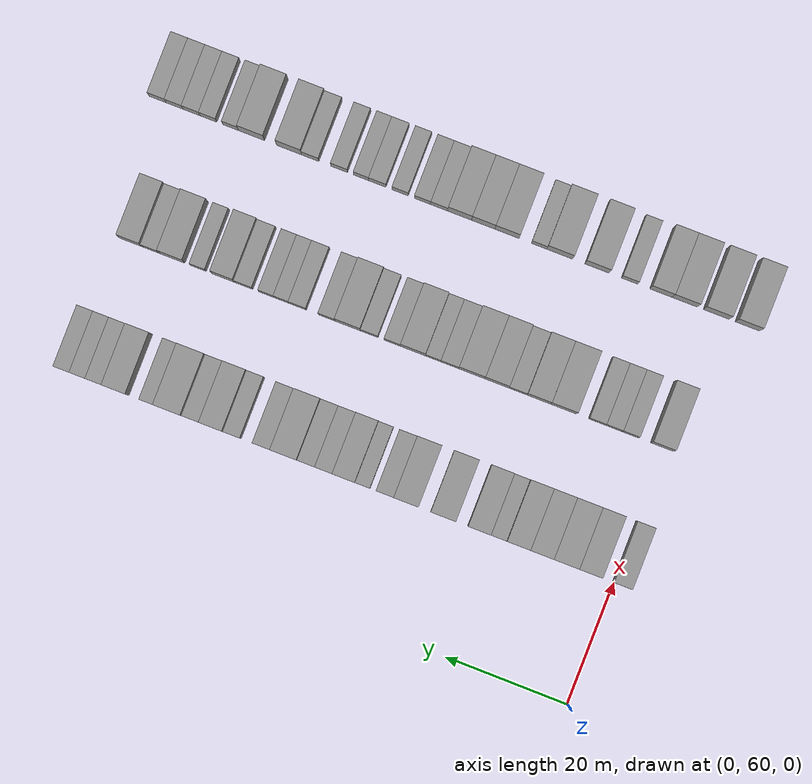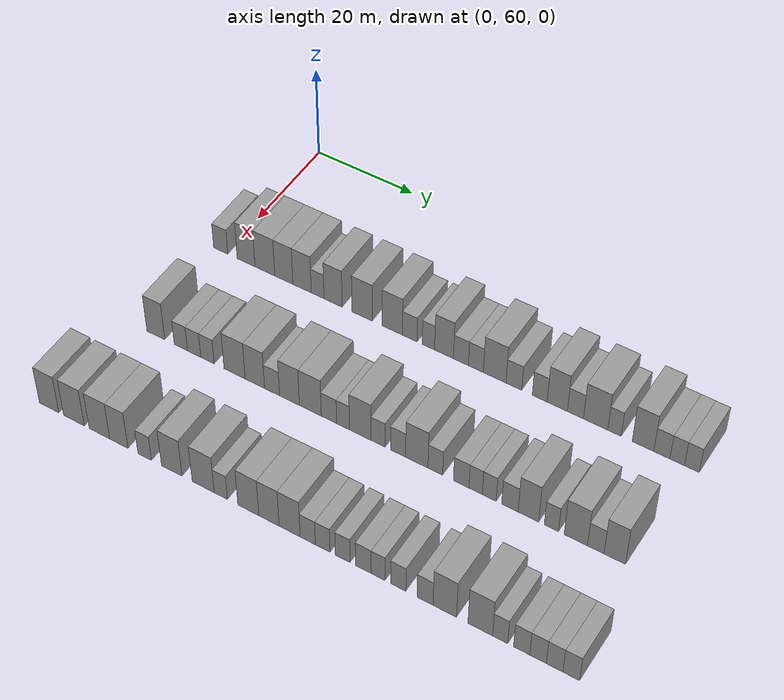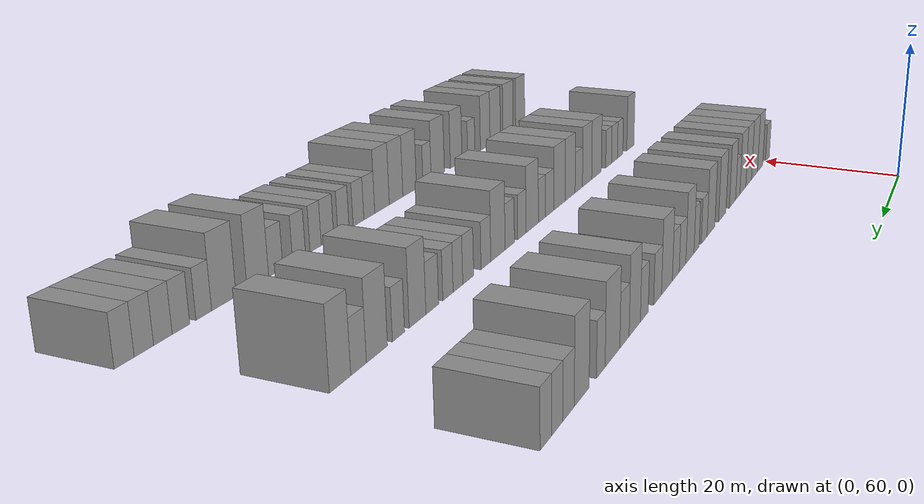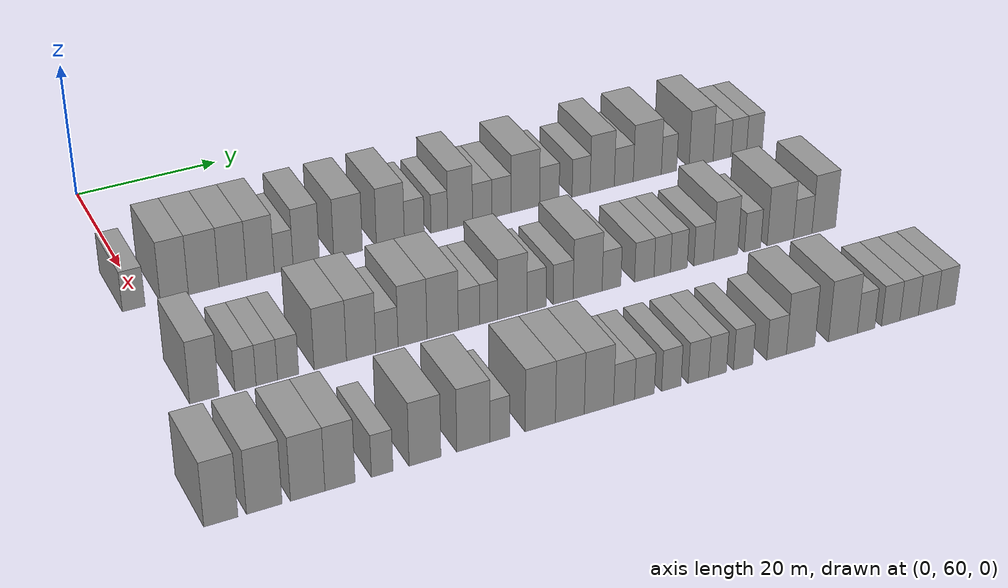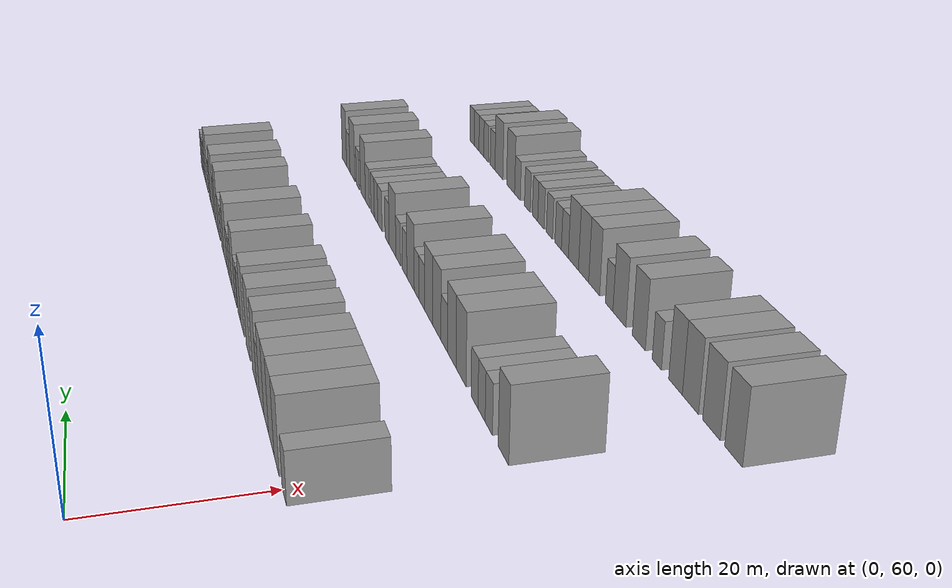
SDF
<sdf version="1.6">
 <world name="default">
  <model name="building_74">
   <static>1</static>
   <pose>25.0000 58.7810 0 0.000000 0.000000 0.000000</pose>
   <link name="link">
    <pose>0 0 3.00 0 0 0</pose>
    <collision name="collision"><geometry><box><size>10.0000 2.9984 6.0000</size></box></geometry></collision>
    <visual name="visual">
     <cast_shadows>0</cast_shadows>
     <geometry><box><size>10.0000 2.9984 6.0000</size></box></geometry>
     <material>
      <script>
       <uri>model://grey_wall/materials/scripts</uri>
       <uri>model://grey_wall/materials/textures</uri>
       <name>vrc/grey_wall</name>
      </script>
     </material>
    </visual>
   </link>
  </model>
  <model name="building_75">
   <static>1</static>
   <pose>25.0000 64.1665 0 0.000000 0.000000 0.000000</pose>
   <link name="link">
    <pose>0 0 4.50 0 0 0</pose>
    <collision name="collision"><geometry><box><size>10.0000 3.7727 9.0000</size></box></geometry></collision>
    <visual name="visual">
     <cast_shadows>0</cast_shadows>
     <geometry><box><size>10.0000 3.7727 9.0000</size></box></geometry>
     <material>
      <script>
       <uri>model://grey_wall/materials/scripts</uri>
       <uri>model://grey_wall/materials/textures</uri>
       <name>vrc/grey_wall</name>
      </script>
     </material>
    </visual>
   </link>
  </model>
  <model name="building_76">
   <static>1</static>
   <pose>25.0000 68.1159 0 0.000000 0.000000 0.000000</pose>
   <link name="link">
    <pose>0 0 4.50 0 0 0</pose>
    <collision name="collision"><geometry><box><size>10.0000 4.1260 9.0000</size></box></geometry></collision>
    <visual name="visual">
     <cast_shadows>0</cast_shadows>
     <geometry><box><size>10.0000 4.1260 9.0000</size></box></geometry>
     <material>
      <script>
       <uri>model://grey_wall/materials/scripts</uri>
       <uri>model://grey_wall/materials/textures</uri>
       <name>vrc/grey_wall</name>
      </script>
     </material>
    </visual>
   </link>
  </model>
  <model name="building_77">
   <static>1</static>
   <pose>25.0000 72.0688 0 0.000000 0.000000 0.000000</pose>
   <link name="link">
    <pose>0 0 4.50 0 0 0</pose>
    <collision name="collision"><geometry><box><size>10.0000 3.7799 9.0000</size></box></geometry></collision>
    <visual name="visual">
     <cast_shadows>0</cast_shadows>
     <geometry><box><size>10.0000 3.7799 9.0000</size></box></geometry>
     <material>
      <script>
       <uri>model://grey_wall/materials/scripts</uri>
       <uri>model://grey_wall/materials/textures</uri>
       <name>vrc/grey_wall</name>
      </script>
     </material>
    </visual>
   </link>
  </model>
  <model name="building_78">
   <static>1</static>
   <pose>25.0000 75.8521 0 0.000000 0.000000 0.000000</pose>
   <link name="link">
    <pose>0 0 4.50 0 0 0</pose>
    <collision name="collision"><geometry><box><size>10.0000 3.7866 9.0000</size></box></geometry></collision>
    <visual name="visual">
     <cast_shadows>0</cast_shadows>
     <geometry><box><size>10.0000 3.7866 9.0000</size></box></geometry>
     <material>
      <script>
       <uri>model://grey_wall/materials/scripts</uri>
       <uri>model://grey_wall/materials/textures</uri>
       <name>vrc/grey_wall</name>
      </script>
     </material>
    </visual>
   </link>
  </model>
  <model name="building_79">
   <static>1</static>
   <pose>25.0000 79.0562 0 0.000000 0.000000 0.000000</pose>
   <link name="link">
    <pose>0 0 3.00 0 0 0</pose>
    <collision name="collision"><geometry><box><size>10.0000 2.6215 6.0000</size></box></geometry></collision>
    <visual name="visual">
     <cast_shadows>0</cast_shadows>
     <geometry><box><size>10.0000 2.6215 6.0000</size></box></geometry>
     <material>
      <script>
       <uri>model://grey_wall/materials/scripts</uri>
       <uri>model://grey_wall/materials/textures</uri>
       <name>vrc/grey_wall</name>
      </script>
     </material>
    </visual>
   </link>
  </model>
  <model name="building_80">
   <static>1</static>
   <pose>25.0000 82.2102 0 0.000000 0.000000 0.000000</pose>
   <link name="link">
    <pose>0 0 4.50 0 0 0</pose>
    <collision name="collision"><geometry><box><size>10.0000 3.6865 9.0000</size></box></geometry></collision>
    <visual name="visual">
     <cast_shadows>0</cast_shadows>
     <geometry><box><size>10.0000 3.6865 9.0000</size></box></geometry>
     <material>
      <script>
       <uri>model://grey_wall/materials/scripts</uri>
       <uri>model://grey_wall/materials/textures</uri>
       <name>vrc/grey_wall</name>
      </script>
     </material>
    </visual>
   </link>
  </model>
  <model name="building_81">
   <static>1</static>
   <pose>25.0000 88.0897 0 0.000000 0.000000 0.000000</pose>
   <link name="link">
    <pose>0 0 4.50 0 0 0</pose>
    <collision name="collision"><geometry><box><size>10.0000 4.0726 9.0000</size></box></geometry></collision>
    <visual name="visual">
     <cast_shadows>0</cast_shadows>
     <geometry><box><size>10.0000 4.0726 9.0000</size></box></geometry>
     <material>
      <script>
       <uri>model://grey_wall/materials/scripts</uri>
       <uri>model://grey_wall/materials/textures</uri>
       <name>vrc/grey_wall</name>
      </script>
     </material>
    </visual>
   </link>
  </model>
  <model name="building_82">
   <static>1</static>
   <pose>25.0000 94.1368 0 0.000000 0.000000 0.000000</pose>
   <link name="link">
    <pose>0 0 4.50 0 0 0</pose>
    <collision name="collision"><geometry><box><size>10.0000 4.0214 9.0000</size></box></geometry></collision>
    <visual name="visual">
     <cast_shadows>0</cast_shadows>
     <geometry><box><size>10.0000 4.0214 9.0000</size></box></geometry>
     <material>
      <script>
       <uri>model://grey_wall/materials/scripts</uri>
       <uri>model://grey_wall/materials/textures</uri>
       <name>vrc/grey_wall</name>
      </script>
     </material>
    </visual>
   </link>
  </model>
  <model name="building_83">
   <static>1</static>
   <pose>25.0000 97.5914 0 0.000000 0.000000 0.000000</pose>
   <link name="link">
    <pose>0 0 3.00 0 0 0</pose>
    <collision name="collision"><geometry><box><size>10.0000 2.8879 6.0000</size></box></geometry></collision>
    <visual name="visual">
     <cast_shadows>0</cast_shadows>
     <geometry><box><size>10.0000 2.8879 6.0000</size></box></geometry>
     <material>
      <script>
       <uri>model://grey_wall/materials/scripts</uri>
       <uri>model://grey_wall/materials/textures</uri>
       <name>vrc/grey_wall</name>
      </script>
     </material>
    </visual>
   </link>
  </model>
  <model name="building_84">
   <static>1</static>
   <pose>25.0000 101.2526 0 0.000000 0.000000 0.000000</pose>
   <link name="link">
    <pose>0 0 3.00 0 0 0</pose>
    <collision name="collision"><geometry><box><size>10.0000 2.4345 6.0000</size></box></geometry></collision>
    <visual name="visual">
     <cast_shadows>0</cast_shadows>
     <geometry><box><size>10.0000 2.4345 6.0000</size></box></geometry>
     <material>
      <script>
       <uri>model://grey_wall/materials/scripts</uri>
       <uri>model://grey_wall/materials/textures</uri>
       <name>vrc/grey_wall</name>
      </script>
     </material>
    </visual>
   </link>
  </model>
  <model name="building_85">
   <static>1</static>
   <pose>25.0000 104.3048 0 0.000000 0.000000 0.000000</pose>
   <link name="link">
    <pose>0 0 4.50 0 0 0</pose>
    <collision name="collision"><geometry><box><size>10.0000 3.6700 9.0000</size></box></geometry></collision>
    <visual name="visual">
     <cast_shadows>0</cast_shadows>
     <geometry><box><size>10.0000 3.6700 9.0000</size></box></geometry>
     <material>
      <script>
       <uri>model://grey_wall/materials/scripts</uri>
       <uri>model://grey_wall/materials/textures</uri>
       <name>vrc/grey_wall</name>
      </script>
     </material>
    </visual>
   </link>
  </model>
  <model name="building_86">
   <static>1</static>
   <pose>25.0000 107.5922 0 0.000000 0.000000 0.000000</pose>
   <link name="link">
    <pose>0 0 3.00 0 0 0</pose>
    <collision name="collision"><geometry><box><size>10.0000 2.9048 6.0000</size></box></geometry></collision>
    <visual name="visual">
     <cast_shadows>0</cast_shadows>
     <geometry><box><size>10.0000 2.9048 6.0000</size></box></geometry>
     <material>
      <script>
       <uri>model://grey_wall/materials/scripts</uri>
       <uri>model://grey_wall/materials/textures</uri>
       <name>vrc/grey_wall</name>
      </script>
     </material>
    </visual>
   </link>
  </model>
  <model name="building_87">
   <static>1</static>
   <pose>25.0000 110.4816 0 0.000000 0.000000 0.000000</pose>
   <link name="link">
    <pose>0 0 3.00 0 0 0</pose>
    <collision name="collision"><geometry><box><size>10.0000 2.8739 6.0000</size></box></geometry></collision>
    <visual name="visual">
     <cast_shadows>0</cast_shadows>
     <geometry><box><size>10.0000 2.8739 6.0000</size></box></geometry>
     <material>
      <script>
       <uri>model://grey_wall/materials/scripts</uri>
       <uri>model://grey_wall/materials/textures</uri>
       <name>vrc/grey_wall</name>
      </script>
     </material>
    </visual>
   </link>
  </model>
  <model name="building_88">
   <static>1</static>
   <pose>25.0000 114.0790 0 0.000000 0.000000 0.000000</pose>
   <link name="link">
    <pose>0 0 4.50 0 0 0</pose>
    <collision name="collision"><geometry><box><size>10.0000 4.3209 9.0000</size></box></geometry></collision>
    <visual name="visual">
     <cast_shadows>0</cast_shadows>
     <geometry><box><size>10.0000 4.3209 9.0000</size></box></geometry>
     <material>
      <script>
       <uri>model://grey_wall/materials/scripts</uri>
       <uri>model://grey_wall/materials/textures</uri>
       <name>vrc/grey_wall</name>
      </script>
     </material>
    </visual>
   </link>
  </model>
  <model name="building_89">
   <static>1</static>
   <pose>25.0000 117.7277 0 0.000000 0.000000 0.000000</pose>
   <link name="link">
    <pose>0 0 3.00 0 0 0</pose>
    <collision name="collision"><geometry><box><size>10.0000 2.9766 6.0000</size></box></geometry></collision>
    <visual name="visual">
     <cast_shadows>0</cast_shadows>
     <geometry><box><size>10.0000 2.9766 6.0000</size></box></geometry>
     <material>
      <script>
       <uri>model://grey_wall/materials/scripts</uri>
       <uri>model://grey_wall/materials/textures</uri>
       <name>vrc/grey_wall</name>
      </script>
     </material>
    </visual>
   </link>
  </model>
  <model name="building_90">
   <static>1</static>
   <pose>25.0000 122.6110 0 0.000000 0.000000 0.000000</pose>
   <link name="link">
    <pose>0 0 3.00 0 0 0</pose>
    <collision name="collision"><geometry><box><size>10.0000 2.7901 6.0000</size></box></geometry></collision>
    <visual name="visual">
     <cast_shadows>0</cast_shadows>
     <geometry><box><size>10.0000 2.7901 6.0000</size></box></geometry>
     <material>
      <script>
       <uri>model://grey_wall/materials/scripts</uri>
       <uri>model://grey_wall/materials/textures</uri>
       <name>vrc/grey_wall</name>
      </script>
     </material>
    </visual>
   </link>
  </model>
  <model name="building_91">
   <static>1</static>
   <pose>25.0000 125.8944 0 0.000000 0.000000 0.000000</pose>
   <link name="link">
    <pose>0 0 4.50 0 0 0</pose>
    <collision name="collision"><geometry><box><size>10.0000 3.7767 9.0000</size></box></geometry></collision>
    <visual name="visual">
     <cast_shadows>0</cast_shadows>
     <geometry><box><size>10.0000 3.7767 9.0000</size></box></geometry>
     <material>
      <script>
       <uri>model://grey_wall/materials/scripts</uri>
       <uri>model://grey_wall/materials/textures</uri>
       <name>vrc/grey_wall</name>
      </script>
     </material>
    </visual>
   </link>
  </model>
  <model name="building_92">
   <static>1</static>
   <pose>25.0000 129.2664 0 0.000000 0.000000 0.000000</pose>
   <link name="link">
    <pose>0 0 3.00 0 0 0</pose>
    <collision name="collision"><geometry><box><size>10.0000 2.9674 6.0000</size></box></geometry></collision>
    <visual name="visual">
     <cast_shadows>0</cast_shadows>
     <geometry><box><size>10.0000 2.9674 6.0000</size></box></geometry>
     <material>
      <script>
       <uri>model://grey_wall/materials/scripts</uri>
       <uri>model://grey_wall/materials/textures</uri>
       <name>vrc/grey_wall</name>
      </script>
     </material>
    </visual>
   </link>
  </model>
  <model name="building_93">
   <static>1</static>
   <pose>25.0000 132.9837 0 0.000000 0.000000 0.000000</pose>
   <link name="link">
    <pose>0 0 4.50 0 0 0</pose>
    <collision name="collision"><geometry><box><size>10.0000 4.4673 9.0000</size></box></geometry></collision>
    <visual name="visual">
     <cast_shadows>0</cast_shadows>
     <geometry><box><size>10.0000 4.4673 9.0000</size></box></geometry>
     <material>
      <script>
       <uri>model://grey_wall/materials/scripts</uri>
       <uri>model://grey_wall/materials/textures</uri>
       <name>vrc/grey_wall</name>
      </script>
     </material>
    </visual>
   </link>
  </model>
  <model name="building_94">
   <static>1</static>
   <pose>25.0000 136.4413 0 0.000000 0.000000 0.000000</pose>
   <link name="link">
    <pose>0 0 3.00 0 0 0</pose>
    <collision name="collision"><geometry><box><size>10.0000 2.4478 6.0000</size></box></geometry></collision>
    <visual name="visual">
     <cast_shadows>0</cast_shadows>
     <geometry><box><size>10.0000 2.4478 6.0000</size></box></geometry>
     <material>
      <script>
       <uri>model://grey_wall/materials/scripts</uri>
       <uri>model://grey_wall/materials/textures</uri>
       <name>vrc/grey_wall</name>
      </script>
     </material>
    </visual>
   </link>
  </model>
  <model name="building_95">
   <static>1</static>
   <pose>25.0000 141.6121 0 0.000000 0.000000 0.000000</pose>
   <link name="link">
    <pose>0 0 4.50 0 0 0</pose>
    <collision name="collision"><geometry><box><size>10.0000 3.8937 9.0000</size></box></geometry></collision>
    <visual name="visual">
     <cast_shadows>0</cast_shadows>
     <geometry><box><size>10.0000 3.8937 9.0000</size></box></geometry>
     <material>
      <script>
       <uri>model://grey_wall/materials/scripts</uri>
       <uri>model://grey_wall/materials/textures</uri>
       <name>vrc/grey_wall</name>
      </script>
     </material>
    </visual>
   </link>
  </model>
  <model name="building_96">
   <static>1</static>
   <pose>25.0000 144.9991 0 0.000000 0.000000 0.000000</pose>
   <link name="link">
    <pose>0 0 3.00 0 0 0</pose>
    <collision name="collision"><geometry><box><size>10.0000 2.8804 6.0000</size></box></geometry></collision>
    <visual name="visual">
     <cast_shadows>0</cast_shadows>
     <geometry><box><size>10.0000 2.8804 6.0000</size></box></geometry>
     <material>
      <script>
       <uri>model://grey_wall/materials/scripts</uri>
       <uri>model://grey_wall/materials/textures</uri>
       <name>vrc/grey_wall</name>
      </script>
     </material>
    </visual>
   </link>
  </model>
  <model name="building_97">
   <static>1</static>
   <pose>25.0000 147.7359 0 0.000000 0.000000 0.000000</pose>
   <link name="link">
    <pose>0 0 3.00 0 0 0</pose>
    <collision name="collision"><geometry><box><size>10.0000 2.5932 6.0000</size></box></geometry></collision>
    <visual name="visual">
     <cast_shadows>0</cast_shadows>
     <geometry><box><size>10.0000 2.5932 6.0000</size></box></geometry>
     <material>
      <script>
       <uri>model://grey_wall/materials/scripts</uri>
       <uri>model://grey_wall/materials/textures</uri>
       <name>vrc/grey_wall</name>
      </script>
     </material>
    </visual>
   </link>
  </model>
  <model name="building_98">
   <static>1</static>
   <pose>25.0000 150.3441 0 0.000000 0.000000 0.000000</pose>
   <link name="link">
    <pose>0 0 3.00 0 0 0</pose>
    <collision name="collision"><geometry><box><size>10.0000 2.6233 6.0000</size></box></geometry></collision>
    <visual name="visual">
     <cast_shadows>0</cast_shadows>
     <geometry><box><size>10.0000 2.6233 6.0000</size></box></geometry>
     <material>
      <script>
       <uri>model://grey_wall/materials/scripts</uri>
       <uri>model://grey_wall/materials/textures</uri>
       <name>vrc/grey_wall</name>
      </script>
     </material>
    </visual>
   </link>
  </model>
  <model name="building_203">
   <static>1</static>
   <pose>47.0000 60.6543 0 0.000000 0.000000 0.000000</pose>
   <link name="link">
    <pose>0 0 4.50 0 0 0</pose>
    <collision name="collision"><geometry><box><size>10.0000 3.6940 9.0000</size></box></geometry></collision>
    <visual name="visual">
     <cast_shadows>0</cast_shadows>
     <geometry><box><size>10.0000 3.6940 9.0000</size></box></geometry>
     <material>
      <script>
       <uri>model://grey_wall/materials/scripts</uri>
       <uri>model://grey_wall/materials/textures</uri>
       <name>vrc/grey_wall</name>
      </script>
     </material>
    </visual>
   </link>
  </model>
  <model name="building_204">
   <static>1</static>
   <pose>47.0000 65.8510 0 0.000000 0.000000 0.000000</pose>
   <link name="link">
    <pose>0 0 3.00 0 0 0</pose>
    <collision name="collision"><geometry><box><size>10.0000 2.6994 6.0000</size></box></geometry></collision>
    <visual name="visual">
     <cast_shadows>0</cast_shadows>
     <geometry><box><size>10.0000 2.6994 6.0000</size></box></geometry>
     <material>
      <script>
       <uri>model://grey_wall/materials/scripts</uri>
       <uri>model://grey_wall/materials/textures</uri>
       <name>vrc/grey_wall</name>
      </script>
     </material>
    </visual>
   </link>
  </model>
  <model name="building_205">
   <static>1</static>
   <pose>47.0000 68.5700 0 0.000000 0.000000 0.000000</pose>
   <link name="link">
    <pose>0 0 3.00 0 0 0</pose>
    <collision name="collision"><geometry><box><size>10.0000 2.7386 6.0000</size></box></geometry></collision>
    <visual name="visual">
     <cast_shadows>0</cast_shadows>
     <geometry><box><size>10.0000 2.7386 6.0000</size></box></geometry>
     <material>
      <script>
       <uri>model://grey_wall/materials/scripts</uri>
       <uri>model://grey_wall/materials/textures</uri>
       <name>vrc/grey_wall</name>
      </script>
     </material>
    </visual>
   </link>
  </model>
  <model name="building_206">
   <static>1</static>
   <pose>47.0000 71.3109 0 0.000000 0.000000 0.000000</pose>
   <link name="link">
    <pose>0 0 3.00 0 0 0</pose>
    <collision name="collision"><geometry><box><size>10.0000 2.7432 6.0000</size></box></geometry></collision>
    <visual name="visual">
     <cast_shadows>0</cast_shadows>
     <geometry><box><size>10.0000 2.7432 6.0000</size></box></geometry>
     <material>
      <script>
       <uri>model://grey_wall/materials/scripts</uri>
       <uri>model://grey_wall/materials/textures</uri>
       <name>vrc/grey_wall</name>
      </script>
     </material>
    </visual>
   </link>
  </model>
  <model name="building_207">
   <static>1</static>
   <pose>47.0000 76.8095 0 0.000000 0.000000 0.000000</pose>
   <link name="link">
    <pose>0 0 4.50 0 0 0</pose>
    <collision name="collision"><geometry><box><size>10.0000 4.2540 9.0000</size></box></geometry></collision>
    <visual name="visual">
     <cast_shadows>0</cast_shadows>
     <geometry><box><size>10.0000 4.2540 9.0000</size></box></geometry>
     <material>
      <script>
       <uri>model://grey_wall/materials/scripts</uri>
       <uri>model://grey_wall/materials/textures</uri>
       <name>vrc/grey_wall</name>
      </script>
     </material>
    </visual>
   </link>
  </model>
  <model name="building_208">
   <static>1</static>
   <pose>47.0000 80.8740 0 0.000000 0.000000 0.000000</pose>
   <link name="link">
    <pose>0 0 4.50 0 0 0</pose>
    <collision name="collision"><geometry><box><size>10.0000 3.8749 9.0000</size></box></geometry></collision>
    <visual name="visual">
     <cast_shadows>0</cast_shadows>
     <geometry><box><size>10.0000 3.8749 9.0000</size></box></geometry>
     <material>
      <script>
       <uri>model://grey_wall/materials/scripts</uri>
       <uri>model://grey_wall/materials/textures</uri>
       <name>vrc/grey_wall</name>
      </script>
     </material>
    </visual>
   </link>
  </model>
  <model name="building_209">
   <static>1</static>
   <pose>47.0000 84.3031 0 0.000000 0.000000 0.000000</pose>
   <link name="link">
    <pose>0 0 3.00 0 0 0</pose>
    <collision name="collision"><geometry><box><size>10.0000 2.9833 6.0000</size></box></geometry></collision>
    <visual name="visual">
     <cast_shadows>0</cast_shadows>
     <geometry><box><size>10.0000 2.9833 6.0000</size></box></geometry>
     <material>
      <script>
       <uri>model://grey_wall/materials/scripts</uri>
       <uri>model://grey_wall/materials/textures</uri>
       <name>vrc/grey_wall</name>
      </script>
     </material>
    </visual>
   </link>
  </model>
  <model name="building_210">
   <static>1</static>
   <pose>47.0000 87.7518 0 0.000000 0.000000 0.000000</pose>
   <link name="link">
    <pose>0 0 4.50 0 0 0</pose>
    <collision name="collision"><geometry><box><size>10.0000 3.9140 9.0000</size></box></geometry></collision>
    <visual name="visual">
     <cast_shadows>0</cast_shadows>
     <geometry><box><size>10.0000 3.9140 9.0000</size></box></geometry>
     <material>
      <script>
       <uri>model://grey_wall/materials/scripts</uri>
       <uri>model://grey_wall/materials/textures</uri>
       <name>vrc/grey_wall</name>
      </script>
     </material>
    </visual>
   </link>
  </model>
  <model name="building_211">
   <static>1</static>
   <pose>47.0000 91.8441 0 0.000000 0.000000 0.000000</pose>
   <link name="link">
    <pose>0 0 4.50 0 0 0</pose>
    <collision name="collision"><geometry><box><size>10.0000 4.2705 9.0000</size></box></geometry></collision>
    <visual name="visual">
     <cast_shadows>0</cast_shadows>
     <geometry><box><size>10.0000 4.2705 9.0000</size></box></geometry>
     <material>
      <script>
       <uri>model://grey_wall/materials/scripts</uri>
       <uri>model://grey_wall/materials/textures</uri>
       <name>vrc/grey_wall</name>
      </script>
     </material>
    </visual>
   </link>
  </model>
  <model name="building_212">
   <static>1</static>
   <pose>47.0000 95.4592 0 0.000000 0.000000 0.000000</pose>
   <link name="link">
    <pose>0 0 3.00 0 0 0</pose>
    <collision name="collision"><geometry><box><size>10.0000 2.9596 6.0000</size></box></geometry></collision>
    <visual name="visual">
     <cast_shadows>0</cast_shadows>
     <geometry><box><size>10.0000 2.9596 6.0000</size></box></geometry>
     <material>
      <script>
       <uri>model://grey_wall/materials/scripts</uri>
       <uri>model://grey_wall/materials/textures</uri>
       <name>vrc/grey_wall</name>
      </script>
     </material>
    </visual>
   </link>
  </model>
  <model name="building_213">
   <static>1</static>
   <pose>47.0000 98.1813 0 0.000000 0.000000 0.000000</pose>
   <link name="link">
    <pose>0 0 3.00 0 0 0</pose>
    <collision name="collision"><geometry><box><size>10.0000 2.4846 6.0000</size></box></geometry></collision>
    <visual name="visual">
     <cast_shadows>0</cast_shadows>
     <geometry><box><size>10.0000 2.4846 6.0000</size></box></geometry>
     <material>
      <script>
       <uri>model://grey_wall/materials/scripts</uri>
       <uri>model://grey_wall/materials/textures</uri>
       <name>vrc/grey_wall</name>
      </script>
     </material>
    </visual>
   </link>
  </model>
  <model name="building_214">
   <static>1</static>
   <pose>47.0000 101.4808 0 0.000000 0.000000 0.000000</pose>
   <link name="link">
    <pose>0 0 4.50 0 0 0</pose>
    <collision name="collision"><geometry><box><size>10.0000 4.1146 9.0000</size></box></geometry></collision>
    <visual name="visual">
     <cast_shadows>0</cast_shadows>
     <geometry><box><size>10.0000 4.1146 9.0000</size></box></geometry>
     <material>
      <script>
       <uri>model://grey_wall/materials/scripts</uri>
       <uri>model://grey_wall/materials/textures</uri>
       <name>vrc/grey_wall</name>
      </script>
     </material>
    </visual>
   </link>
  </model>
  <model name="building_215">
   <static>1</static>
   <pose>47.0000 104.8873 0 0.000000 0.000000 0.000000</pose>
   <link name="link">
    <pose>0 0 3.00 0 0 0</pose>
    <collision name="collision"><geometry><box><size>10.0000 2.6984 6.0000</size></box></geometry></collision>
    <visual name="visual">
     <cast_shadows>0</cast_shadows>
     <geometry><box><size>10.0000 2.6984 6.0000</size></box></geometry>
     <material>
      <script>
       <uri>model://grey_wall/materials/scripts</uri>
       <uri>model://grey_wall/materials/textures</uri>
       <name>vrc/grey_wall</name>
      </script>
     </material>
    </visual>
   </link>
  </model>
  <model name="building_216">
   <static>1</static>
   <pose>47.0000 108.6638 0 0.000000 0.000000 0.000000</pose>
   <link name="link">
    <pose>0 0 3.00 0 0 0</pose>
    <collision name="collision"><geometry><box><size>10.0000 2.8547 6.0000</size></box></geometry></collision>
    <visual name="visual">
     <cast_shadows>0</cast_shadows>
     <geometry><box><size>10.0000 2.8547 6.0000</size></box></geometry>
     <material>
      <script>
       <uri>model://grey_wall/materials/scripts</uri>
       <uri>model://grey_wall/materials/textures</uri>
       <name>vrc/grey_wall</name>
      </script>
     </material>
    </visual>
   </link>
  </model>
  <model name="building_217">
   <static>1</static>
   <pose>47.0000 112.1832 0 0.000000 0.000000 0.000000</pose>
   <link name="link">
    <pose>0 0 4.50 0 0 0</pose>
    <collision name="collision"><geometry><box><size>10.0000 4.1841 9.0000</size></box></geometry></collision>
    <visual name="visual">
     <cast_shadows>0</cast_shadows>
     <geometry><box><size>10.0000 4.1841 9.0000</size></box></geometry>
     <material>
      <script>
       <uri>model://grey_wall/materials/scripts</uri>
       <uri>model://grey_wall/materials/textures</uri>
       <name>vrc/grey_wall</name>
      </script>
     </material>
    </visual>
   </link>
  </model>
  <model name="building_218">
   <static>1</static>
   <pose>47.0000 115.6416 0 0.000000 0.000000 0.000000</pose>
   <link name="link">
    <pose>0 0 3.00 0 0 0</pose>
    <collision name="collision"><geometry><box><size>10.0000 2.7327 6.0000</size></box></geometry></collision>
    <visual name="visual">
     <cast_shadows>0</cast_shadows>
     <geometry><box><size>10.0000 2.7327 6.0000</size></box></geometry>
     <material>
      <script>
       <uri>model://grey_wall/materials/scripts</uri>
       <uri>model://grey_wall/materials/textures</uri>
       <name>vrc/grey_wall</name>
      </script>
     </material>
    </visual>
   </link>
  </model>
  <model name="building_219">
   <static>1</static>
   <pose>47.0000 120.4412 0 0.000000 0.000000 0.000000</pose>
   <link name="link">
    <pose>0 0 3.00 0 0 0</pose>
    <collision name="collision"><geometry><box><size>10.0000 2.8663 6.0000</size></box></geometry></collision>
    <visual name="visual">
     <cast_shadows>0</cast_shadows>
     <geometry><box><size>10.0000 2.8663 6.0000</size></box></geometry>
     <material>
      <script>
       <uri>model://grey_wall/materials/scripts</uri>
       <uri>model://grey_wall/materials/textures</uri>
       <name>vrc/grey_wall</name>
      </script>
     </material>
    </visual>
   </link>
  </model>
  <model name="building_220">
   <static>1</static>
   <pose>47.0000 123.0964 0 0.000000 0.000000 0.000000</pose>
   <link name="link">
    <pose>0 0 3.00 0 0 0</pose>
    <collision name="collision"><geometry><box><size>10.0000 2.4441 6.0000</size></box></geometry></collision>
    <visual name="visual">
     <cast_shadows>0</cast_shadows>
     <geometry><box><size>10.0000 2.4441 6.0000</size></box></geometry>
     <material>
      <script>
       <uri>model://grey_wall/materials/scripts</uri>
       <uri>model://grey_wall/materials/textures</uri>
       <name>vrc/grey_wall</name>
      </script>
     </material>
    </visual>
   </link>
  </model>
  <model name="building_221">
   <static>1</static>
   <pose>47.0000 125.5714 0 0.000000 0.000000 0.000000</pose>
   <link name="link">
    <pose>0 0 3.00 0 0 0</pose>
    <collision name="collision"><geometry><box><size>10.0000 2.5059 6.0000</size></box></geometry></collision>
    <visual name="visual">
     <cast_shadows>0</cast_shadows>
     <geometry><box><size>10.0000 2.5059 6.0000</size></box></geometry>
     <material>
      <script>
       <uri>model://grey_wall/materials/scripts</uri>
       <uri>model://grey_wall/materials/textures</uri>
       <name>vrc/grey_wall</name>
      </script>
     </material>
    </visual>
   </link>
  </model>
  <model name="building_222">
   <static>1</static>
   <pose>47.0000 129.3030 0 0.000000 0.000000 0.000000</pose>
   <link name="link">
    <pose>0 0 3.00 0 0 0</pose>
    <collision name="collision"><geometry><box><size>10.0000 2.9573 6.0000</size></box></geometry></collision>
    <visual name="visual">
     <cast_shadows>0</cast_shadows>
     <geometry><box><size>10.0000 2.9573 6.0000</size></box></geometry>
     <material>
      <script>
       <uri>model://grey_wall/materials/scripts</uri>
       <uri>model://grey_wall/materials/textures</uri>
       <name>vrc/grey_wall</name>
      </script>
     </material>
    </visual>
   </link>
  </model>
  <model name="building_223">
   <static>1</static>
   <pose>47.0000 132.6286 0 0.000000 0.000000 0.000000</pose>
   <link name="link">
    <pose>0 0 4.50 0 0 0</pose>
    <collision name="collision"><geometry><box><size>10.0000 3.6940 9.0000</size></box></geometry></collision>
    <visual name="visual">
     <cast_shadows>0</cast_shadows>
     <geometry><box><size>10.0000 3.6940 9.0000</size></box></geometry>
     <material>
      <script>
       <uri>model://grey_wall/materials/scripts</uri>
       <uri>model://grey_wall/materials/textures</uri>
       <name>vrc/grey_wall</name>
      </script>
     </material>
    </visual>
   </link>
  </model>
  <model name="building_224">
   <static>1</static>
   <pose>47.0000 136.7348 0 0.000000 0.000000 0.000000</pose>
   <link name="link">
    <pose>0 0 3.00 0 0 0</pose>
    <collision name="collision"><geometry><box><size>10.0000 2.5184 6.0000</size></box></geometry></collision>
    <visual name="visual">
     <cast_shadows>0</cast_shadows>
     <geometry><box><size>10.0000 2.5184 6.0000</size></box></geometry>
     <material>
      <script>
       <uri>model://grey_wall/materials/scripts</uri>
       <uri>model://grey_wall/materials/textures</uri>
       <name>vrc/grey_wall</name>
      </script>
     </material>
    </visual>
   </link>
  </model>
  <model name="building_225">
   <static>1</static>
   <pose>47.0000 141.0443 0 0.000000 0.000000 0.000000</pose>
   <link name="link">
    <pose>0 0 4.50 0 0 0</pose>
    <collision name="collision"><geometry><box><size>10.0000 4.1006 9.0000</size></box></geometry></collision>
    <visual name="visual">
     <cast_shadows>0</cast_shadows>
     <geometry><box><size>10.0000 4.1006 9.0000</size></box></geometry>
     <material>
      <script>
       <uri>model://grey_wall/materials/scripts</uri>
       <uri>model://grey_wall/materials/textures</uri>
       <name>vrc/grey_wall</name>
      </script>
     </material>
    </visual>
   </link>
  </model>
  <model name="building_226">
   <static>1</static>
   <pose>47.0000 144.5346 0 0.000000 0.000000 0.000000</pose>
   <link name="link">
    <pose>0 0 3.00 0 0 0</pose>
    <collision name="collision"><geometry><box><size>10.0000 2.8799 6.0000</size></box></geometry></collision>
    <visual name="visual">
     <cast_shadows>0</cast_shadows>
     <geometry><box><size>10.0000 2.8799 6.0000</size></box></geometry>
     <material>
      <script>
       <uri>model://grey_wall/materials/scripts</uri>
       <uri>model://grey_wall/materials/textures</uri>
       <name>vrc/grey_wall</name>
      </script>
     </material>
    </visual>
   </link>
  </model>
  <model name="building_227">
   <static>1</static>
   <pose>47.0000 147.8356 0 0.000000 0.000000 0.000000</pose>
   <link name="link">
    <pose>0 0 4.50 0 0 0</pose>
    <collision name="collision"><geometry><box><size>10.0000 3.7221 9.0000</size></box></geometry></collision>
    <visual name="visual">
     <cast_shadows>0</cast_shadows>
     <geometry><box><size>10.0000 3.7221 9.0000</size></box></geometry>
     <material>
      <script>
       <uri>model://grey_wall/materials/scripts</uri>
       <uri>model://grey_wall/materials/textures</uri>
       <name>vrc/grey_wall</name>
      </script>
     </material>
    </visual>
   </link>
  </model>
  <model name="building_328">
   <static>1</static>
   <pose>69.0000 55.0231 0 0.000000 0.000000 0.000000</pose>
   <link name="link">
    <pose>0 0 4.50 0 0 0</pose>
    <collision name="collision"><geometry><box><size>10.0000 3.9959 9.0000</size></box></geometry></collision>
    <visual name="visual">
     <cast_shadows>0</cast_shadows>
     <geometry><box><size>10.0000 3.9959 9.0000</size></box></geometry>
     <material>
      <script>
       <uri>model://grey_wall/materials/scripts</uri>
       <uri>model://grey_wall/materials/textures</uri>
       <name>vrc/grey_wall</name>
      </script>
     </material>
    </visual>
   </link>
  </model>
  <model name="building_329">
   <static>1</static>
   <pose>69.0000 60.1329 0 0.000000 0.000000 0.000000</pose>
   <link name="link">
    <pose>0 0 4.50 0 0 0</pose>
    <collision name="collision"><geometry><box><size>10.0000 4.2237 9.0000</size></box></geometry></collision>
    <visual name="visual">
     <cast_shadows>0</cast_shadows>
     <geometry><box><size>10.0000 4.2237 9.0000</size></box></geometry>
     <material>
      <script>
       <uri>model://grey_wall/materials/scripts</uri>
       <uri>model://grey_wall/materials/textures</uri>
       <name>vrc/grey_wall</name>
      </script>
     </material>
    </visual>
   </link>
  </model>
  <model name="building_330">
   <static>1</static>
   <pose>69.0000 65.3181 0 0.000000 0.000000 0.000000</pose>
   <link name="link">
    <pose>0 0 4.50 0 0 0</pose>
    <collision name="collision"><geometry><box><size>10.0000 4.1467 9.0000</size></box></geometry></collision>
    <visual name="visual">
     <cast_shadows>0</cast_shadows>
     <geometry><box><size>10.0000 4.1467 9.0000</size></box></geometry>
     <material>
      <script>
       <uri>model://grey_wall/materials/scripts</uri>
       <uri>model://grey_wall/materials/textures</uri>
       <name>vrc/grey_wall</name>
      </script>
     </material>
    </visual>
   </link>
  </model>
  <model name="building_331">
   <static>1</static>
   <pose>69.0000 69.2227 0 0.000000 0.000000 0.000000</pose>
   <link name="link">
    <pose>0 0 4.50 0 0 0</pose>
    <collision name="collision"><geometry><box><size>10.0000 3.6626 9.0000</size></box></geometry></collision>
    <visual name="visual">
     <cast_shadows>0</cast_shadows>
     <geometry><box><size>10.0000 3.6626 9.0000</size></box></geometry>
     <material>
      <script>
       <uri>model://grey_wall/materials/scripts</uri>
       <uri>model://grey_wall/materials/textures</uri>
       <name>vrc/grey_wall</name>
      </script>
     </material>
    </visual>
   </link>
  </model>
  <model name="building_332">
   <static>1</static>
   <pose>69.0000 74.3876 0 0.000000 0.000000 0.000000</pose>
   <link name="link">
    <pose>0 0 3.00 0 0 0</pose>
    <collision name="collision"><geometry><box><size>10.0000 2.6673 6.0000</size></box></geometry></collision>
    <visual name="visual">
     <cast_shadows>0</cast_shadows>
     <geometry><box><size>10.0000 2.6673 6.0000</size></box></geometry>
     <material>
      <script>
       <uri>model://grey_wall/materials/scripts</uri>
       <uri>model://grey_wall/materials/textures</uri>
       <name>vrc/grey_wall</name>
      </script>
     </material>
    </visual>
   </link>
  </model>
  <model name="building_333">
   <static>1</static>
   <pose>69.0000 79.7194 0 0.000000 0.000000 0.000000</pose>
   <link name="link">
    <pose>0 0 4.50 0 0 0</pose>
    <collision name="collision"><geometry><box><size>10.0000 3.9962 9.0000</size></box></geometry></collision>
    <visual name="visual">
     <cast_shadows>0</cast_shadows>
     <geometry><box><size>10.0000 3.9962 9.0000</size></box></geometry>
     <material>
      <script>
       <uri>model://grey_wall/materials/scripts</uri>
       <uri>model://grey_wall/materials/textures</uri>
       <name>vrc/grey_wall</name>
      </script>
     </material>
    </visual>
   </link>
  </model>
  <model name="building_334">
   <static>1</static>
   <pose>69.0000 85.8474 0 0.000000 0.000000 0.000000</pose>
   <link name="link">
    <pose>0 0 4.50 0 0 0</pose>
    <collision name="collision"><geometry><box><size>10.0000 4.2598 9.0000</size></box></geometry></collision>
    <visual name="visual">
     <cast_shadows>0</cast_shadows>
     <geometry><box><size>10.0000 4.2598 9.0000</size></box></geometry>
     <material>
      <script>
       <uri>model://grey_wall/materials/scripts</uri>
       <uri>model://grey_wall/materials/textures</uri>
       <name>vrc/grey_wall</name>
      </script>
     </material>
    </visual>
   </link>
  </model>
  <model name="building_335">
   <static>1</static>
   <pose>69.0000 89.2477 0 0.000000 0.000000 0.000000</pose>
   <link name="link">
    <pose>0 0 3.00 0 0 0</pose>
    <collision name="collision"><geometry><box><size>10.0000 2.5408 6.0000</size></box></geometry></collision>
    <visual name="visual">
     <cast_shadows>0</cast_shadows>
     <geometry><box><size>10.0000 2.5408 6.0000</size></box></geometry>
     <material>
      <script>
       <uri>model://grey_wall/materials/scripts</uri>
       <uri>model://grey_wall/materials/textures</uri>
       <name>vrc/grey_wall</name>
      </script>
     </material>
    </visual>
   </link>
  </model>
  <model name="building_336">
   <static>1</static>
   <pose>69.0000 94.5012 0 0.000000 0.000000 0.000000</pose>
   <link name="link">
    <pose>0 0 4.50 0 0 0</pose>
    <collision name="collision"><geometry><box><size>10.0000 3.9663 9.0000</size></box></geometry></collision>
    <visual name="visual">
     <cast_shadows>0</cast_shadows>
     <geometry><box><size>10.0000 3.9663 9.0000</size></box></geometry>
     <material>
      <script>
       <uri>model://grey_wall/materials/scripts</uri>
       <uri>model://grey_wall/materials/textures</uri>
       <name>vrc/grey_wall</name>
      </script>
     </material>
    </visual>
   </link>
  </model>
  <model name="building_337">
   <static>1</static>
   <pose>69.0000 98.3975 0 0.000000 0.000000 0.000000</pose>
   <link name="link">
    <pose>0 0 4.50 0 0 0</pose>
    <collision name="collision"><geometry><box><size>10.0000 3.8263 9.0000</size></box></geometry></collision>
    <visual name="visual">
     <cast_shadows>0</cast_shadows>
     <geometry><box><size>10.0000 3.8263 9.0000</size></box></geometry>
     <material>
      <script>
       <uri>model://grey_wall/materials/scripts</uri>
       <uri>model://grey_wall/materials/textures</uri>
       <name>vrc/grey_wall</name>
      </script>
     </material>
    </visual>
   </link>
  </model>
  <model name="building_338">
   <static>1</static>
   <pose>69.0000 102.2743 0 0.000000 0.000000 0.000000</pose>
   <link name="link">
    <pose>0 0 4.50 0 0 0</pose>
    <collision name="collision"><geometry><box><size>10.0000 3.9273 9.0000</size></box></geometry></collision>
    <visual name="visual">
     <cast_shadows>0</cast_shadows>
     <geometry><box><size>10.0000 3.9273 9.0000</size></box></geometry>
     <material>
      <script>
       <uri>model://grey_wall/materials/scripts</uri>
       <uri>model://grey_wall/materials/textures</uri>
       <name>vrc/grey_wall</name>
      </script>
     </material>
    </visual>
   </link>
  </model>
  <model name="building_339">
   <static>1</static>
   <pose>69.0000 105.6519 0 0.000000 0.000000 0.000000</pose>
   <link name="link">
    <pose>0 0 3.00 0 0 0</pose>
    <collision name="collision"><geometry><box><size>10.0000 2.8277 6.0000</size></box></geometry></collision>
    <visual name="visual">
     <cast_shadows>0</cast_shadows>
     <geometry><box><size>10.0000 2.8277 6.0000</size></box></geometry>
     <material>
      <script>
       <uri>model://grey_wall/materials/scripts</uri>
       <uri>model://grey_wall/materials/textures</uri>
       <name>vrc/grey_wall</name>
      </script>
     </material>
    </visual>
   </link>
  </model>
  <model name="building_340">
   <static>1</static>
   <pose>69.0000 108.4082 0 0.000000 0.000000 0.000000</pose>
   <link name="link">
    <pose>0 0 3.00 0 0 0</pose>
    <collision name="collision"><geometry><box><size>10.0000 2.6851 6.0000</size></box></geometry></collision>
    <visual name="visual">
     <cast_shadows>0</cast_shadows>
     <geometry><box><size>10.0000 2.6851 6.0000</size></box></geometry>
     <material>
      <script>
       <uri>model://grey_wall/materials/scripts</uri>
       <uri>model://grey_wall/materials/textures</uri>
       <name>vrc/grey_wall</name>
      </script>
     </material>
    </visual>
   </link>
  </model>
  <model name="building_341">
   <static>1</static>
   <pose>69.0000 112.0849 0 0.000000 0.000000 0.000000</pose>
   <link name="link">
    <pose>0 0 3.00 0 0 0</pose>
    <collision name="collision"><geometry><box><size>10.0000 2.6683 6.0000</size></box></geometry></collision>
    <visual name="visual">
     <cast_shadows>0</cast_shadows>
     <geometry><box><size>10.0000 2.6683 6.0000</size></box></geometry>
     <material>
      <script>
       <uri>model://grey_wall/materials/scripts</uri>
       <uri>model://grey_wall/materials/textures</uri>
       <name>vrc/grey_wall</name>
      </script>
     </material>
    </visual>
   </link>
  </model>
  <model name="building_342">
   <static>1</static>
   <pose>69.0000 115.8454 0 0.000000 0.000000 0.000000</pose>
   <link name="link">
    <pose>0 0 3.00 0 0 0</pose>
    <collision name="collision"><geometry><box><size>10.0000 2.8527 6.0000</size></box></geometry></collision>
    <visual name="visual">
     <cast_shadows>0</cast_shadows>
     <geometry><box><size>10.0000 2.8527 6.0000</size></box></geometry>
     <material>
      <script>
       <uri>model://grey_wall/materials/scripts</uri>
       <uri>model://grey_wall/materials/textures</uri>
       <name>vrc/grey_wall</name>
      </script>
     </material>
    </visual>
   </link>
  </model>
  <model name="building_343">
   <static>1</static>
   <pose>69.0000 118.5086 0 0.000000 0.000000 0.000000</pose>
   <link name="link">
    <pose>0 0 3.00 0 0 0</pose>
    <collision name="collision"><geometry><box><size>10.0000 2.4737 6.0000</size></box></geometry></collision>
    <visual name="visual">
     <cast_shadows>0</cast_shadows>
     <geometry><box><size>10.0000 2.4737 6.0000</size></box></geometry>
     <material>
      <script>
       <uri>model://grey_wall/materials/scripts</uri>
       <uri>model://grey_wall/materials/textures</uri>
       <name>vrc/grey_wall</name>
      </script>
     </material>
    </visual>
   </link>
  </model>
  <model name="building_344">
   <static>1</static>
   <pose>69.0000 122.1058 0 0.000000 0.000000 0.000000</pose>
   <link name="link">
    <pose>0 0 3.00 0 0 0</pose>
    <collision name="collision"><geometry><box><size>10.0000 2.7208 6.0000</size></box></geometry></collision>
    <visual name="visual">
     <cast_shadows>0</cast_shadows>
     <geometry><box><size>10.0000 2.7208 6.0000</size></box></geometry>
     <material>
      <script>
       <uri>model://grey_wall/materials/scripts</uri>
       <uri>model://grey_wall/materials/textures</uri>
       <name>vrc/grey_wall</name>
      </script>
     </material>
    </visual>
   </link>
  </model>
  <model name="building_345">
   <static>1</static>
   <pose>69.0000 126.8794 0 0.000000 0.000000 0.000000</pose>
   <link name="link">
    <pose>0 0 3.00 0 0 0</pose>
    <collision name="collision"><geometry><box><size>10.0000 2.8263 6.0000</size></box></geometry></collision>
    <visual name="visual">
     <cast_shadows>0</cast_shadows>
     <geometry><box><size>10.0000 2.8263 6.0000</size></box></geometry>
     <material>
      <script>
       <uri>model://grey_wall/materials/scripts</uri>
       <uri>model://grey_wall/materials/textures</uri>
       <name>vrc/grey_wall</name>
      </script>
     </material>
    </visual>
   </link>
  </model>
  <model name="building_346">
   <static>1</static>
   <pose>69.0000 130.3436 0 0.000000 0.000000 0.000000</pose>
   <link name="link">
    <pose>0 0 4.50 0 0 0</pose>
    <collision name="collision"><geometry><box><size>10.0000 4.1021 9.0000</size></box></geometry></collision>
    <visual name="visual">
     <cast_shadows>0</cast_shadows>
     <geometry><box><size>10.0000 4.1021 9.0000</size></box></geometry>
     <material>
      <script>
       <uri>model://grey_wall/materials/scripts</uri>
       <uri>model://grey_wall/materials/textures</uri>
       <name>vrc/grey_wall</name>
      </script>
     </material>
    </visual>
   </link>
  </model>
  <model name="building_347">
   <static>1</static>
   <pose>69.0000 136.5255 0 0.000000 0.000000 0.000000</pose>
   <link name="link">
    <pose>0 0 4.50 0 0 0</pose>
    <collision name="collision"><geometry><box><size>10.0000 4.2618 9.0000</size></box></geometry></collision>
    <visual name="visual">
     <cast_shadows>0</cast_shadows>
     <geometry><box><size>10.0000 4.2618 9.0000</size></box></geometry>
     <material>
      <script>
       <uri>model://grey_wall/materials/scripts</uri>
       <uri>model://grey_wall/materials/textures</uri>
       <name>vrc/grey_wall</name>
      </script>
     </material>
    </visual>
   </link>
  </model>
  <model name="building_348">
   <static>1</static>
   <pose>69.0000 139.9568 0 0.000000 0.000000 0.000000</pose>
   <link name="link">
    <pose>0 0 3.00 0 0 0</pose>
    <collision name="collision"><geometry><box><size>10.0000 2.6008 6.0000</size></box></geometry></collision>
    <visual name="visual">
     <cast_shadows>0</cast_shadows>
     <geometry><box><size>10.0000 2.6008 6.0000</size></box></geometry>
     <material>
      <script>
       <uri>model://grey_wall/materials/scripts</uri>
       <uri>model://grey_wall/materials/textures</uri>
       <name>vrc/grey_wall</name>
      </script>
     </material>
    </visual>
   </link>
  </model>
  <model name="building_349">
   <static>1</static>
   <pose>69.0000 143.6363 0 0.000000 0.000000 0.000000</pose>
   <link name="link">
    <pose>0 0 3.00 0 0 0</pose>
    <collision name="collision"><geometry><box><size>10.0000 2.7582 6.0000</size></box></geometry></collision>
    <visual name="visual">
     <cast_shadows>0</cast_shadows>
     <geometry><box><size>10.0000 2.7582 6.0000</size></box></geometry>
     <material>
      <script>
       <uri>model://grey_wall/materials/scripts</uri>
       <uri>model://grey_wall/materials/textures</uri>
       <name>vrc/grey_wall</name>
      </script>
     </material>
    </visual>
   </link>
  </model>
  <model name="building_350">
   <static>1</static>
   <pose>69.0000 146.4167 0 0.000000 0.000000 0.000000</pose>
   <link name="link">
    <pose>0 0 3.00 0 0 0</pose>
    <collision name="collision"><geometry><box><size>10.0000 2.8025 6.0000</size></box></geometry></collision>
    <visual name="visual">
     <cast_shadows>0</cast_shadows>
     <geometry><box><size>10.0000 2.8025 6.0000</size></box></geometry>
     <material>
      <script>
       <uri>model://grey_wall/materials/scripts</uri>
       <uri>model://grey_wall/materials/textures</uri>
       <name>vrc/grey_wall</name>
      </script>
     </material>
    </visual>
   </link>
  </model>
  <model name="building_351">
   <static>1</static>
   <pose>69.0000 149.2148 0 0.000000 0.000000 0.000000</pose>
   <link name="link">
    <pose>0 0 3.00 0 0 0</pose>
    <collision name="collision"><geometry><box><size>10.0000 2.7937 6.0000</size></box></geometry></collision>
    <visual name="visual">
     <cast_shadows>0</cast_shadows>
     <geometry><box><size>10.0000 2.7937 6.0000</size></box></geometry>
     <material>
      <script>
       <uri>model://grey_wall/materials/scripts</uri>
       <uri>model://grey_wall/materials/textures</uri>
       <name>vrc/grey_wall</name>
      </script>
     </material>
    </visual>
   </link>
  </model>
  <model name="building_352">
   <static>1</static>
   <pose>69.0000 152.0028 0 0.000000 0.000000 0.000000</pose>
   <link name="link">
    <pose>0 0 3.00 0 0 0</pose>
    <collision name="collision"><geometry><box><size>10.0000 2.7824 6.0000</size></box></geometry></collision>
    <visual name="visual">
     <cast_shadows>0</cast_shadows>
     <geometry><box><size>10.0000 2.7824 6.0000</size></box></geometry>
     <material>
      <script>
       <uri>model://grey_wall/materials/scripts</uri>
       <uri>model://grey_wall/materials/textures</uri>
       <name>vrc/grey_wall</name>
      </script>
     </material>
    </visual>
   </link>
  </model>
 </world>
</sdf>
